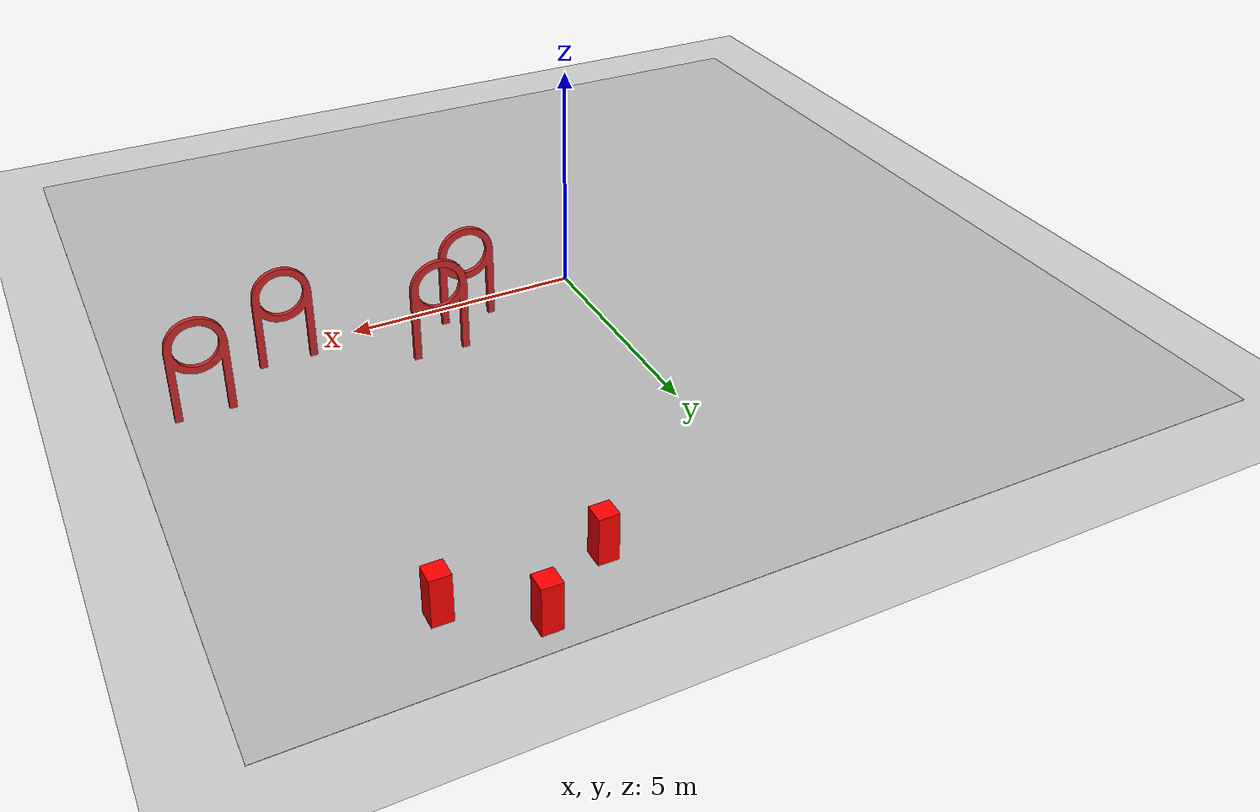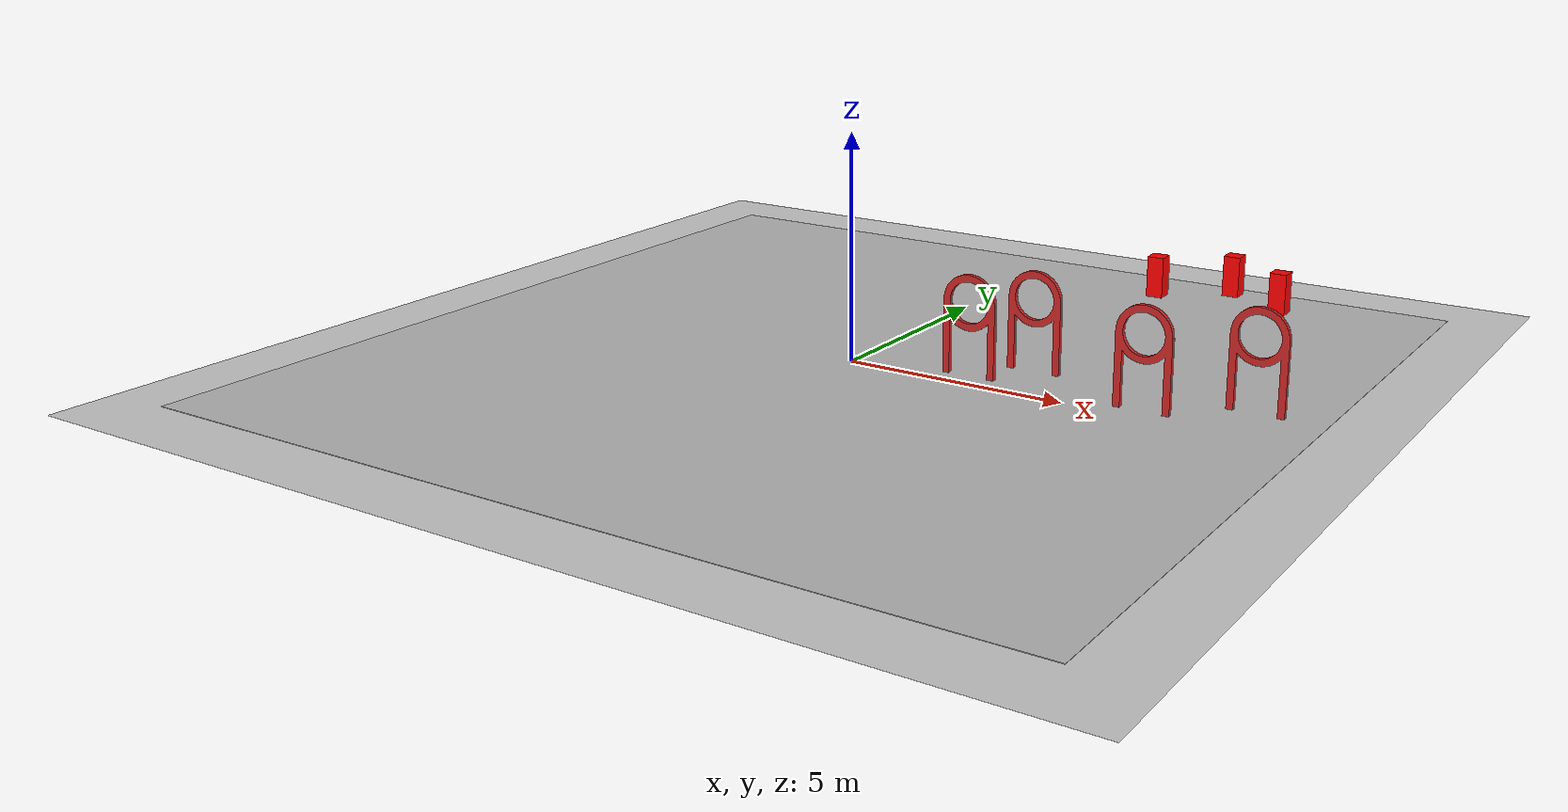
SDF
<sdf version="1.7">
 <world name="default">
  <light name="sun" type="directional">
   <pose>0 0 10 0 -0 0</pose>
   <diffuse>0.8 0.8 0.8 1</diffuse>
   <specular>0.2 0.2 0.2 1</specular>
   <attenuation>
    <range>1000</range>
    <constant>0.9</constant>
    <linear>0.01</linear>
    <quadratic>0.001</quadratic>
   </attenuation>
   <direction>-0.5 0.1 -0.9</direction>
   <spot><inner_angle>0</inner_angle><outer_angle>0</outer_angle><falloff>0</falloff></spot>
  </light>
  <model name="ground_plane">
   <static>1</static>
   <link name="link">
    <collision name="collision">
     <geometry><plane><normal>0 0 1</normal><size>100 100</size></plane></geometry>
     <surface><friction><ode><mu>100</mu><mu2>50</mu2></ode></friction></surface>
    </collision>
    <visual name="visual">
     <cast_shadows>0</cast_shadows>
     <geometry><plane><normal>0 0 1</normal><size>100 100</size></plane></geometry>
     <material>
      <script><uri>file://media/materials/scripts/gazebo.material</uri><name>Gazebo/Grey</name></script>
     </material>
    </visual>
   </link>
  </model>
  <gravity>0 0 -9.8</gravity>
  <magnetic_field>6e-06 2.3e-05 -4.2e-05</magnetic_field>
  <atmosphere type="adiabatic"/>
  <physics type="ode">
   <max_step_size>0.001</max_step_size>
   <real_time_factor>1</real_time_factor>
   <real_time_update_rate>1000</real_time_update_rate>
  </physics>
  <scene><ambient>0.4 0.4 0.4 1</ambient><background>0.7 0.7 0.7 1</background><shadows>1</shadows></scene>
  <spherical_coordinates>
   <surface_model>EARTH_WGS84</surface_model>
   <latitude_deg>0</latitude_deg>
   <longitude_deg>0</longitude_deg>
   <elevation>0</elevation>
   <heading_deg>0</heading_deg>
  </spherical_coordinates>
  <include>
   <uri>model://circle_window_90cm</uri>
   <name>circle_window_90cm</name>
   <pose>2.59166 0.556694 0 0 -0 0</pose>
  </include>
  <include>
   <uri>model://circle_window_90cm</uri>
   <name>circle_window_90cm_0</name>
   <pose>3.59944 1.56349 0 0 -0 0</pose>
  </include>
  <include>
   <uri>model://circle_window_90cm</uri>
   <name>circle_window_90cm_1</name>
   <pose>6.54906 0.476572 0 0 -0 0</pose>
  </include>
  <include>
   <uri>model://circle_window_90cm</uri>
   <name>circle_window_90cm_2</name>
   <pose>8.51167 1.54925 0 0 -0 0</pose>
  </include>
  <include><uri>model://cuboid_40cm</uri><name>cuboid_40cm</name><pose>3.41797 8.45402 0 0 -0 0</pose></include>
  <include>
   <uri>model://cuboid_40cm</uri>
   <name>cuboid_40cm_0</name>
   <pose>4.95512 9.49246 0 0 -0 0</pose>
  </include>
  <include>
   <uri>model://cuboid_40cm</uri>
   <name>cuboid_40cm_1</name>
   <pose>6.45033 8.55863 0 0 -0 0</pose>
  </include>
  <model name="yundrone_logo">
   <static>1</static>
   <link name="yundrone_logo">
    <visual name="visual">
     <cast_shadows>0</cast_shadows>
     <geometry><box><size>20 20 0.01</size></box></geometry>
     <material>
      <script><uri>model://yundrone_logo/yundrone_logo.material</uri><name>yundrone_logo</name></script>
     </material>
    </visual>
   </link>
   <pose>-0.010518 0.067068 0 0 -0 0</pose>
  </model>
 </world>
</sdf>

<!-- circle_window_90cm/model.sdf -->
<sdf version="1.6">
  <static>true</static>
  <model name="circle_window_90cm">
    <link name="link">
      <collision name='collision'>
        <pose frame=''>0 0 0 0 0 0</pose>
        <geometry>
          <mesh>
            <uri>model://circle_window_90cm/meshes/circle_window_90cm.stl</uri>
          </mesh>
        </geometry>
      </collision>
      <!-- 显示设置 -->
      <visual name="visual">
        <geometry>
          <mesh>
            <scale>1 1 1</scale>
            <uri>model://circle_window_90cm/meshes/circle_window_90cm.stl</uri>
          </mesh>
        </geometry>
        <material>
          <script>
            <name>Gazebo/Red</name>
            <uri>file://media/materials/scripts/gazebo.material</uri>
          </script>
        </material>
      </visual>
    </link>
  </model>
</sdf>

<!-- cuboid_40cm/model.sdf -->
<sdf version="1.6">
  <model name="red_cuboid">
    <link name="link">
      <!-- 视觉属性 -->
      <visual name="visual">
        <geometry>
          <box>
            <!-- 格式：长(x) 宽(y) 高(z) -->
            <size>0.4 0.4 2</size>
          </box>
        </geometry>
        <material>
          <!-- 推荐方案：使用RGBA直接定义颜色 -->
          <ambient>1 0 0 1</ambient>   <!-- 环境光颜色 -->
          <diffuse>1 0 0 1</diffuse>   <!-- 漫反射颜色 -->
          <specular>0.1 0.1 0.1 1</specular>  <!-- 镜面反射 -->
        </material>
      </visual>

      <!-- 碰撞属性 -->
      <collision name="collision">
        <geometry>
          <box>
            <size>0.4 0.4 2</size>
          </box>
        </geometry>
      </collision>

      <!-- 物理属性（质量1kg） -->
      <inertial>
        <mass>1</mass>
        <inertia>
          <!-- 长方体惯性矩阵计算公式：
               Ixx = (mass/12)*(width² + height²)
               Iyy = (mass/12)*(length² + height²)
               Izz = (mass/12)*(length² + width²) -->
          <ixx>0.3417</ixx>
          <iyy>0.3417</iyy>
          <izz>0.0067</izz>
          <ixy>0</ixy>
          <ixz>0</ixz>
          <iyz>0</iyz>
        </inertia>
      </inertial>
    </link>
  </model>
</sdf>
